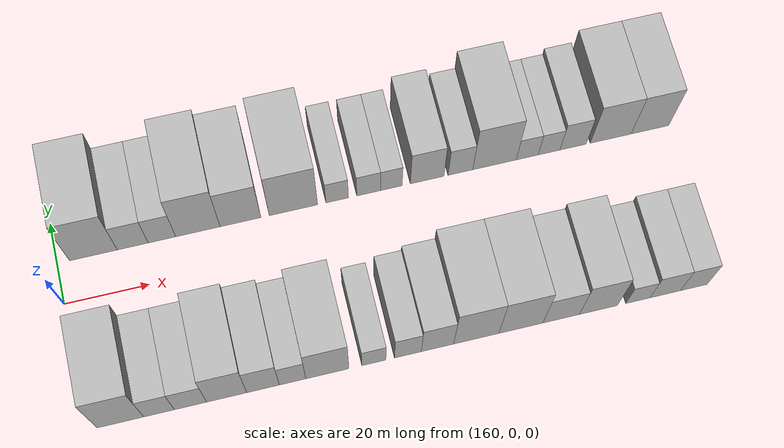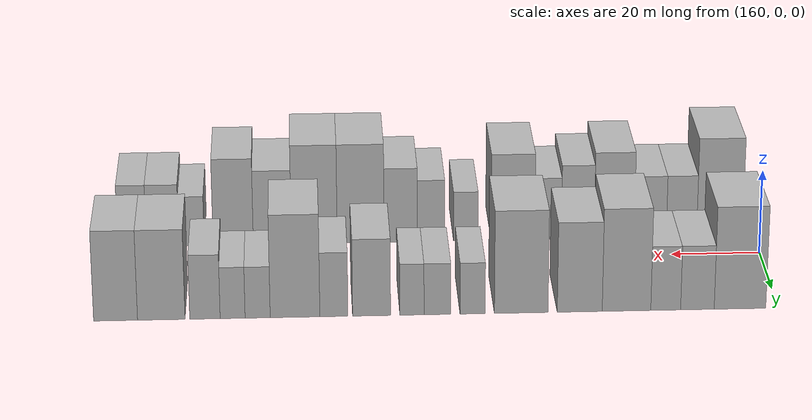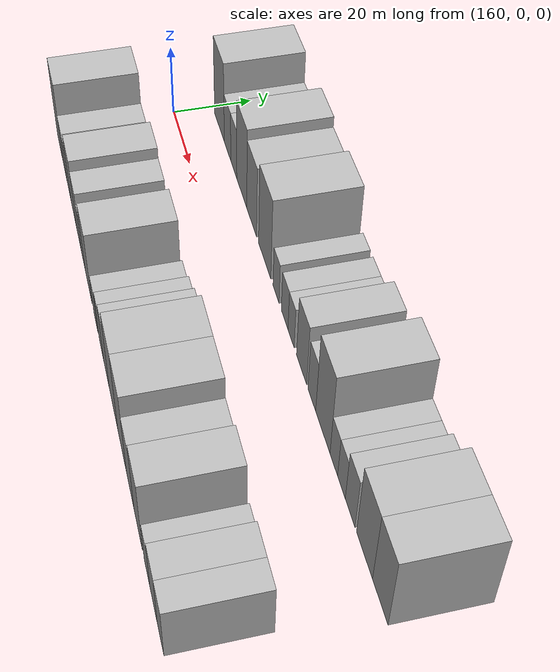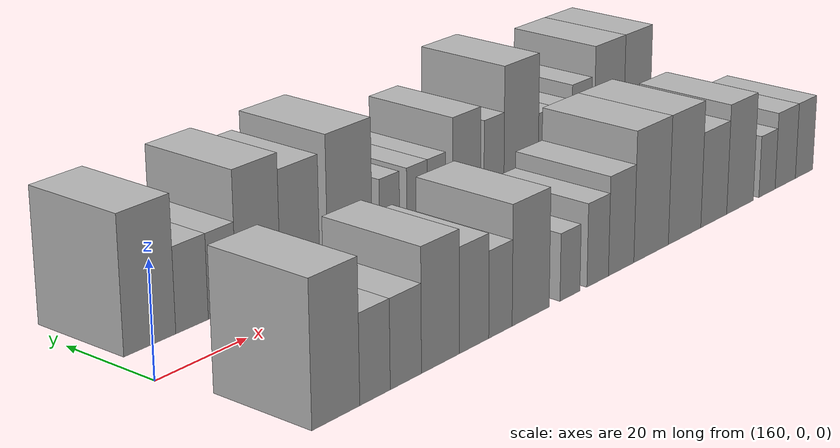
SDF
<sdf version="1.6">
 <world name="default">
  <model name="building_16">
   <static>1</static>
   <pose>168.4958 20.0000 0 0.000000 0.000000 1.570796</pose>
   <link name="link">
    <pose>0 0 12.00 0 0 0</pose>
    <collision name="collision"><geometry><box><size>20.0000 11.2589 24.0000</size></box></geometry></collision>
    <visual name="visual">
     <cast_shadows>0</cast_shadows>
     <geometry><box><size>20.0000 11.2589 24.0000</size></box></geometry>
     <material>
      <script>
       <uri>model://HANNAS_wall/materials/scripts</uri>
       <uri>model://HANNAS_wall/materials/textures</uri>
       <name>vrc/HANNAS_wall</name>
      </script>
     </material>
    </visual>
   </link>
  </model>
  <model name="building_17">
   <static>1</static>
   <pose>177.7843 20.0000 0 0.000000 0.000000 1.570796</pose>
   <link name="link">
    <pose>0 0 7.50 0 0 0</pose>
    <collision name="collision"><geometry><box><size>20.0000 7.3181 15.0000</size></box></geometry></collision>
    <visual name="visual">
     <cast_shadows>0</cast_shadows>
     <geometry><box><size>20.0000 7.3181 15.0000</size></box></geometry>
     <material>
      <script>
       <uri>model://HANNAS_wall/materials/scripts</uri>
       <uri>model://HANNAS_wall/materials/textures</uri>
       <name>vrc/HANNAS_wall</name>
      </script>
     </material>
    </visual>
   </link>
  </model>
  <model name="building_18">
   <static>1</static>
   <pose>184.6922 20.0000 0 0.000000 0.000000 1.570796</pose>
   <link name="link">
    <pose>0 0 7.50 0 0 0</pose>
    <collision name="collision"><geometry><box><size>20.0000 6.4976 15.0000</size></box></geometry></collision>
    <visual name="visual">
     <cast_shadows>0</cast_shadows>
     <geometry><box><size>20.0000 6.4976 15.0000</size></box></geometry>
     <material>
      <script>
       <uri>model://HANNAS_wall/materials/scripts</uri>
       <uri>model://HANNAS_wall/materials/textures</uri>
       <name>vrc/HANNAS_wall</name>
      </script>
     </material>
    </visual>
   </link>
  </model>
  <model name="building_19">
   <static>1</static>
   <pose>193.2254 20.0000 0 0.000000 0.000000 1.570796</pose>
   <link name="link">
    <pose>0 0 12.00 0 0 0</pose>
    <collision name="collision"><geometry><box><size>20.0000 10.5688 24.0000</size></box></geometry></collision>
    <visual name="visual">
     <cast_shadows>0</cast_shadows>
     <geometry><box><size>20.0000 10.5688 24.0000</size></box></geometry>
     <material>
      <script>
       <uri>model://HANNAS_wall/materials/scripts</uri>
       <uri>model://HANNAS_wall/materials/textures</uri>
       <name>vrc/HANNAS_wall</name>
      </script>
     </material>
    </visual>
   </link>
  </model>
  <model name="building_20">
   <static>1</static>
   <pose>203.3958 20.0000 0 0.000000 0.000000 1.570796</pose>
   <link name="link">
    <pose>0 0 10.50 0 0 0</pose>
    <collision name="collision"><geometry><box><size>20.0000 9.7721 21.0000</size></box></geometry></collision>
    <visual name="visual">
     <cast_shadows>0</cast_shadows>
     <geometry><box><size>20.0000 9.7721 21.0000</size></box></geometry>
     <material>
      <script>
       <uri>model://HANNAS_wall/materials/scripts</uri>
       <uri>model://HANNAS_wall/materials/textures</uri>
       <name>vrc/HANNAS_wall</name>
      </script>
     </material>
    </visual>
   </link>
  </model>
  <model name="building_21">
   <static>1</static>
   <pose>216.1008 20.0000 0 0.000000 0.000000 1.570796</pose>
   <link name="link">
    <pose>0 0 12.00 0 0 0</pose>
    <collision name="collision"><geometry><box><size>20.0000 11.6379 24.0000</size></box></geometry></collision>
    <visual name="visual">
     <cast_shadows>0</cast_shadows>
     <geometry><box><size>20.0000 11.6379 24.0000</size></box></geometry>
     <material>
      <script>
       <uri>model://HANNAS_wall/materials/scripts</uri>
       <uri>model://HANNAS_wall/materials/textures</uri>
       <name>vrc/HANNAS_wall</name>
      </script>
     </material>
    </visual>
   </link>
  </model>
  <model name="building_22">
   <static>1</static>
   <pose>226.6469 20.0000 0 0.000000 0.000000 1.570796</pose>
   <link name="link">
    <pose>0 0 6.00 0 0 0</pose>
    <collision name="collision"><geometry><box><size>20.0000 5.4542 12.0000</size></box></geometry></collision>
    <visual name="visual">
     <cast_shadows>0</cast_shadows>
     <geometry><box><size>20.0000 5.4542 12.0000</size></box></geometry>
     <material>
      <script>
       <uri>model://HANNAS_wall/materials/scripts</uri>
       <uri>model://HANNAS_wall/materials/textures</uri>
       <name>vrc/HANNAS_wall</name>
      </script>
     </material>
    </visual>
   </link>
  </model>
  <model name="building_23">
   <static>1</static>
   <pose>234.2700 20.0000 0 0.000000 0.000000 1.570796</pose>
   <link name="link">
    <pose>0 0 6.00 0 0 0</pose>
    <collision name="collision"><geometry><box><size>20.0000 5.7919 12.0000</size></box></geometry></collision>
    <visual name="visual">
     <cast_shadows>0</cast_shadows>
     <geometry><box><size>20.0000 5.7919 12.0000</size></box></geometry>
     <material>
      <script>
       <uri>model://HANNAS_wall/materials/scripts</uri>
       <uri>model://HANNAS_wall/materials/textures</uri>
       <name>vrc/HANNAS_wall</name>
      </script>
     </material>
    </visual>
   </link>
  </model>
  <model name="building_24">
   <static>1</static>
   <pose>239.7805 20.0000 0 0.000000 0.000000 1.570796</pose>
   <link name="link">
    <pose>0 0 6.00 0 0 0</pose>
    <collision name="collision"><geometry><box><size>20.0000 5.2292 12.0000</size></box></geometry></collision>
    <visual name="visual">
     <cast_shadows>0</cast_shadows>
     <geometry><box><size>20.0000 5.2292 12.0000</size></box></geometry>
     <material>
      <script>
       <uri>model://HANNAS_wall/materials/scripts</uri>
       <uri>model://HANNAS_wall/materials/textures</uri>
       <name>vrc/HANNAS_wall</name>
      </script>
     </material>
    </visual>
   </link>
  </model>
  <model name="building_25">
   <static>1</static>
   <pose>248.5028 20.0000 0 0.000000 0.000000 1.570796</pose>
   <link name="link">
    <pose>0 0 9.00 0 0 0</pose>
    <collision name="collision"><geometry><box><size>20.0000 8.2153 18.0000</size></box></geometry></collision>
    <visual name="visual">
     <cast_shadows>0</cast_shadows>
     <geometry><box><size>20.0000 8.2153 18.0000</size></box></geometry>
     <material>
      <script>
       <uri>model://HANNAS_wall/materials/scripts</uri>
       <uri>model://HANNAS_wall/materials/textures</uri>
       <name>vrc/HANNAS_wall</name>
      </script>
     </material>
    </visual>
   </link>
  </model>
  <model name="building_26">
   <static>1</static>
   <pose>256.6438 20.0000 0 0.000000 0.000000 1.570796</pose>
   <link name="link">
    <pose>0 0 7.50 0 0 0</pose>
    <collision name="collision"><geometry><box><size>20.0000 6.0667 15.0000</size></box></geometry></collision>
    <visual name="visual">
     <cast_shadows>0</cast_shadows>
     <geometry><box><size>20.0000 6.0667 15.0000</size></box></geometry>
     <material>
      <script>
       <uri>model://HANNAS_wall/materials/scripts</uri>
       <uri>model://HANNAS_wall/materials/textures</uri>
       <name>vrc/HANNAS_wall</name>
      </script>
     </material>
    </visual>
   </link>
  </model>
  <model name="building_27">
   <static>1</static>
   <pose>265.0303 20.0000 0 0.000000 0.000000 1.570796</pose>
   <link name="link">
    <pose>0 0 12.00 0 0 0</pose>
    <collision name="collision"><geometry><box><size>20.0000 10.7064 24.0000</size></box></geometry></collision>
    <visual name="visual">
     <cast_shadows>0</cast_shadows>
     <geometry><box><size>20.0000 10.7064 24.0000</size></box></geometry>
     <material>
      <script>
       <uri>model://HANNAS_wall/materials/scripts</uri>
       <uri>model://HANNAS_wall/materials/textures</uri>
       <name>vrc/HANNAS_wall</name>
      </script>
     </material>
    </visual>
   </link>
  </model>
  <model name="building_28">
   <static>1</static>
   <pose>273.0879 20.0000 0 0.000000 0.000000 1.570796</pose>
   <link name="link">
    <pose>0 0 6.00 0 0 0</pose>
    <collision name="collision"><geometry><box><size>20.0000 5.4087 12.0000</size></box></geometry></collision>
    <visual name="visual">
     <cast_shadows>0</cast_shadows>
     <geometry><box><size>20.0000 5.4087 12.0000</size></box></geometry>
     <material>
      <script>
       <uri>model://HANNAS_wall/materials/scripts</uri>
       <uri>model://HANNAS_wall/materials/textures</uri>
       <name>vrc/HANNAS_wall</name>
      </script>
     </material>
    </visual>
   </link>
  </model>
  <model name="building_29">
   <static>1</static>
   <pose>278.4785 20.0000 0 0.000000 0.000000 1.570796</pose>
   <link name="link">
    <pose>0 0 6.00 0 0 0</pose>
    <collision name="collision"><geometry><box><size>20.0000 5.3727 12.0000</size></box></geometry></collision>
    <visual name="visual">
     <cast_shadows>0</cast_shadows>
     <geometry><box><size>20.0000 5.3727 12.0000</size></box></geometry>
     <material>
      <script>
       <uri>model://HANNAS_wall/materials/scripts</uri>
       <uri>model://HANNAS_wall/materials/textures</uri>
       <name>vrc/HANNAS_wall</name>
      </script>
     </material>
    </visual>
   </link>
  </model>
  <model name="building_30">
   <static>1</static>
   <pose>284.4347 20.0000 0 0.000000 0.000000 1.570796</pose>
   <link name="link">
    <pose>0 0 7.50 0 0 0</pose>
    <collision name="collision"><geometry><box><size>20.0000 6.5397 15.0000</size></box></geometry></collision>
    <visual name="visual">
     <cast_shadows>0</cast_shadows>
     <geometry><box><size>20.0000 6.5397 15.0000</size></box></geometry>
     <material>
      <script>
       <uri>model://HANNAS_wall/materials/scripts</uri>
       <uri>model://HANNAS_wall/materials/textures</uri>
       <name>vrc/HANNAS_wall</name>
      </script>
     </material>
    </visual>
   </link>
  </model>
  <model name="building_31">
   <static>1</static>
   <pose>293.8150 20.0000 0 0.000000 0.000000 1.570796</pose>
   <link name="link">
    <pose>0 0 10.50 0 0 0</pose>
    <collision name="collision"><geometry><box><size>20.0000 10.2208 21.0000</size></box></geometry></collision>
    <visual name="visual">
     <cast_shadows>0</cast_shadows>
     <geometry><box><size>20.0000 10.2208 21.0000</size></box></geometry>
     <material>
      <script>
       <uri>model://HANNAS_wall/materials/scripts</uri>
       <uri>model://HANNAS_wall/materials/textures</uri>
       <name>vrc/HANNAS_wall</name>
      </script>
     </material>
    </visual>
   </link>
  </model>
  <model name="building_32">
   <static>1</static>
   <pose>303.6363 20.0000 0 0.000000 0.000000 1.570796</pose>
   <link name="link">
    <pose>0 0 10.50 0 0 0</pose>
    <collision name="collision"><geometry><box><size>20.0000 9.4219 21.0000</size></box></geometry></collision>
    <visual name="visual">
     <cast_shadows>0</cast_shadows>
     <geometry><box><size>20.0000 9.4219 21.0000</size></box></geometry>
     <material>
      <script>
       <uri>model://HANNAS_wall/materials/scripts</uri>
       <uri>model://HANNAS_wall/materials/textures</uri>
       <name>vrc/HANNAS_wall</name>
      </script>
     </material>
    </visual>
   </link>
  </model>
  <model name="building_49">
   <static>1</static>
   <pose>167.7622 -20.0000 0 0.000000 0.000000 1.570796</pose>
   <link name="link">
    <pose>0 0 12.00 0 0 0</pose>
    <collision name="collision"><geometry><box><size>20.0000 10.5459 24.0000</size></box></geometry></collision>
    <visual name="visual">
     <cast_shadows>0</cast_shadows>
     <geometry><box><size>20.0000 10.5459 24.0000</size></box></geometry>
     <material>
      <script>
       <uri>model://HANNAS_wall/materials/scripts</uri>
       <uri>model://HANNAS_wall/materials/textures</uri>
       <name>vrc/HANNAS_wall</name>
      </script>
     </material>
    </visual>
   </link>
  </model>
  <model name="building_50">
   <static>1</static>
   <pose>176.5200 -20.0000 0 0.000000 0.000000 1.570796</pose>
   <link name="link">
    <pose>0 0 7.50 0 0 0</pose>
    <collision name="collision"><geometry><box><size>20.0000 6.9697 15.0000</size></box></geometry></collision>
    <visual name="visual">
     <cast_shadows>0</cast_shadows>
     <geometry><box><size>20.0000 6.9697 15.0000</size></box></geometry>
     <material>
      <script>
       <uri>model://HANNAS_wall/materials/scripts</uri>
       <uri>model://HANNAS_wall/materials/textures</uri>
       <name>vrc/HANNAS_wall</name>
      </script>
     </material>
    </visual>
   </link>
  </model>
  <model name="building_51">
   <static>1</static>
   <pose>183.6822 -20.0000 0 0.000000 0.000000 1.570796</pose>
   <link name="link">
    <pose>0 0 7.50 0 0 0</pose>
    <collision name="collision"><geometry><box><size>20.0000 7.3549 15.0000</size></box></geometry></collision>
    <visual name="visual">
     <cast_shadows>0</cast_shadows>
     <geometry><box><size>20.0000 7.3549 15.0000</size></box></geometry>
     <material>
      <script>
       <uri>model://HANNAS_wall/materials/scripts</uri>
       <uri>model://HANNAS_wall/materials/textures</uri>
       <name>vrc/HANNAS_wall</name>
      </script>
     </material>
    </visual>
   </link>
  </model>
  <model name="building_52">
   <static>1</static>
   <pose>191.9594 -20.0000 0 0.000000 0.000000 1.570796</pose>
   <link name="link">
    <pose>0 0 10.50 0 0 0</pose>
    <collision name="collision"><geometry><box><size>20.0000 9.1994 21.0000</size></box></geometry></collision>
    <visual name="visual">
     <cast_shadows>0</cast_shadows>
     <geometry><box><size>20.0000 9.1994 21.0000</size></box></geometry>
     <material>
      <script>
       <uri>model://HANNAS_wall/materials/scripts</uri>
       <uri>model://HANNAS_wall/materials/textures</uri>
       <name>vrc/HANNAS_wall</name>
      </script>
     </material>
    </visual>
   </link>
  </model>
  <model name="building_53">
   <static>1</static>
   <pose>200.3121 -20.0000 0 0.000000 0.000000 1.570796</pose>
   <link name="link">
    <pose>0 0 9.00 0 0 0</pose>
    <collision name="collision"><geometry><box><size>20.0000 7.5061 18.0000</size></box></geometry></collision>
    <visual name="visual">
     <cast_shadows>0</cast_shadows>
     <geometry><box><size>20.0000 7.5061 18.0000</size></box></geometry>
     <material>
      <script>
       <uri>model://HANNAS_wall/materials/scripts</uri>
       <uri>model://HANNAS_wall/materials/textures</uri>
       <name>vrc/HANNAS_wall</name>
      </script>
     </material>
    </visual>
   </link>
  </model>
  <model name="building_54">
   <static>1</static>
   <pose>207.1144 -20.0000 0 0.000000 0.000000 1.570796</pose>
   <link name="link">
    <pose>0 0 7.50 0 0 0</pose>
    <collision name="collision"><geometry><box><size>20.0000 6.0985 15.0000</size></box></geometry></collision>
    <visual name="visual">
     <cast_shadows>0</cast_shadows>
     <geometry><box><size>20.0000 6.0985 15.0000</size></box></geometry>
     <material>
      <script>
       <uri>model://HANNAS_wall/materials/scripts</uri>
       <uri>model://HANNAS_wall/materials/textures</uri>
       <name>vrc/HANNAS_wall</name>
      </script>
     </material>
    </visual>
   </link>
  </model>
  <model name="building_55">
   <static>1</static>
   <pose>215.1546 -20.0000 0 0.000000 0.000000 1.570796</pose>
   <link name="link">
    <pose>0 0 10.50 0 0 0</pose>
    <collision name="collision"><geometry><box><size>20.0000 9.9819 21.0000</size></box></geometry></collision>
    <visual name="visual">
     <cast_shadows>0</cast_shadows>
     <geometry><box><size>20.0000 9.9819 21.0000</size></box></geometry>
     <material>
      <script>
       <uri>model://HANNAS_wall/materials/scripts</uri>
       <uri>model://HANNAS_wall/materials/textures</uri>
       <name>vrc/HANNAS_wall</name>
      </script>
     </material>
    </visual>
   </link>
  </model>
  <model name="building_56">
   <static>1</static>
   <pose>225.9427 -20.0000 0 0.000000 0.000000 1.570796</pose>
   <link name="link">
    <pose>0 0 6.00 0 0 0</pose>
    <collision name="collision"><geometry><box><size>20.0000 5.5945 12.0000</size></box></geometry></collision>
    <visual name="visual">
     <cast_shadows>0</cast_shadows>
     <geometry><box><size>20.0000 5.5945 12.0000</size></box></geometry>
     <material>
      <script>
       <uri>model://HANNAS_wall/materials/scripts</uri>
       <uri>model://HANNAS_wall/materials/textures</uri>
       <name>vrc/HANNAS_wall</name>
      </script>
     </material>
    </visual>
   </link>
  </model>
  <model name="building_57">
   <static>1</static>
   <pose>233.8667 -20.0000 0 0.000000 0.000000 1.570796</pose>
   <link name="link">
    <pose>0 0 7.50 0 0 0</pose>
    <collision name="collision"><geometry><box><size>20.0000 6.2535 15.0000</size></box></geometry></collision>
    <visual name="visual">
     <cast_shadows>0</cast_shadows>
     <geometry><box><size>20.0000 6.2535 15.0000</size></box></geometry>
     <material>
      <script>
       <uri>model://HANNAS_wall/materials/scripts</uri>
       <uri>model://HANNAS_wall/materials/textures</uri>
       <name>vrc/HANNAS_wall</name>
      </script>
     </material>
    </visual>
   </link>
  </model>
  <model name="building_58">
   <static>1</static>
   <pose>240.7866 -20.0000 0 0.000000 0.000000 1.570796</pose>
   <link name="link">
    <pose>0 0 9.00 0 0 0</pose>
    <collision name="collision"><geometry><box><size>20.0000 7.5861 18.0000</size></box></geometry></collision>
    <visual name="visual">
     <cast_shadows>0</cast_shadows>
     <geometry><box><size>20.0000 7.5861 18.0000</size></box></geometry>
     <material>
      <script>
       <uri>model://HANNAS_wall/materials/scripts</uri>
       <uri>model://HANNAS_wall/materials/textures</uri>
       <name>vrc/HANNAS_wall</name>
      </script>
     </material>
    </visual>
   </link>
  </model>
  <model name="building_59">
   <static>1</static>
   <pose>249.9186 -20.0000 0 0.000000 0.000000 1.570796</pose>
   <link name="link">
    <pose>0 0 12.00 0 0 0</pose>
    <collision name="collision"><geometry><box><size>20.0000 10.6780 24.0000</size></box></geometry></collision>
    <visual name="visual">
     <cast_shadows>0</cast_shadows>
     <geometry><box><size>20.0000 10.6780 24.0000</size></box></geometry>
     <material>
      <script>
       <uri>model://HANNAS_wall/materials/scripts</uri>
       <uri>model://HANNAS_wall/materials/textures</uri>
       <name>vrc/HANNAS_wall</name>
      </script>
     </material>
    </visual>
   </link>
  </model>
  <model name="building_60">
   <static>1</static>
   <pose>260.4790 -20.0000 0 0.000000 0.000000 1.570796</pose>
   <link name="link">
    <pose>0 0 12.00 0 0 0</pose>
    <collision name="collision"><geometry><box><size>20.0000 10.4428 24.0000</size></box></geometry></collision>
    <visual name="visual">
     <cast_shadows>0</cast_shadows>
     <geometry><box><size>20.0000 10.4428 24.0000</size></box></geometry>
     <material>
      <script>
       <uri>model://HANNAS_wall/materials/scripts</uri>
       <uri>model://HANNAS_wall/materials/textures</uri>
       <name>vrc/HANNAS_wall</name>
      </script>
     </material>
    </visual>
   </link>
  </model>
  <model name="building_61">
   <static>1</static>
   <pose>270.0182 -20.0000 0 0.000000 0.000000 1.570796</pose>
   <link name="link">
    <pose>0 0 9.00 0 0 0</pose>
    <collision name="collision"><geometry><box><size>20.0000 8.6356 18.0000</size></box></geometry></collision>
    <visual name="visual">
     <cast_shadows>0</cast_shadows>
     <geometry><box><size>20.0000 8.6356 18.0000</size></box></geometry>
     <material>
      <script>
       <uri>model://HANNAS_wall/materials/scripts</uri>
       <uri>model://HANNAS_wall/materials/textures</uri>
       <name>vrc/HANNAS_wall</name>
      </script>
     </material>
    </visual>
   </link>
  </model>
  <model name="building_62">
   <static>1</static>
   <pose>278.9018 -20.0000 0 0.000000 0.000000 1.570796</pose>
   <link name="link">
    <pose>0 0 10.50 0 0 0</pose>
    <collision name="collision"><geometry><box><size>20.0000 9.1316 21.0000</size></box></geometry></collision>
    <visual name="visual">
     <cast_shadows>0</cast_shadows>
     <geometry><box><size>20.0000 9.1316 21.0000</size></box></geometry>
     <material>
      <script>
       <uri>model://HANNAS_wall/materials/scripts</uri>
       <uri>model://HANNAS_wall/materials/textures</uri>
       <name>vrc/HANNAS_wall</name>
      </script>
     </material>
    </visual>
   </link>
  </model>
  <model name="building_63">
   <static>1</static>
   <pose>288.3574 -20.0000 0 0.000000 0.000000 1.570796</pose>
   <link name="link">
    <pose>0 0 6.00 0 0 0</pose>
    <collision name="collision"><geometry><box><size>20.0000 5.7794 12.0000</size></box></geometry></collision>
    <visual name="visual">
     <cast_shadows>0</cast_shadows>
     <geometry><box><size>20.0000 5.7794 12.0000</size></box></geometry>
     <material>
      <script>
       <uri>model://HANNAS_wall/materials/scripts</uri>
       <uri>model://HANNAS_wall/materials/textures</uri>
       <name>vrc/HANNAS_wall</name>
      </script>
     </material>
    </visual>
   </link>
  </model>
  <model name="building_64">
   <static>1</static>
   <pose>294.9369 -20.0000 0 0.000000 0.000000 1.570796</pose>
   <link name="link">
    <pose>0 0 7.50 0 0 0</pose>
    <collision name="collision"><geometry><box><size>20.0000 7.3797 15.0000</size></box></geometry></collision>
    <visual name="visual">
     <cast_shadows>0</cast_shadows>
     <geometry><box><size>20.0000 7.3797 15.0000</size></box></geometry>
     <material>
      <script>
       <uri>model://HANNAS_wall/materials/scripts</uri>
       <uri>model://HANNAS_wall/materials/textures</uri>
       <name>vrc/HANNAS_wall</name>
      </script>
     </material>
    </visual>
   </link>
  </model>
  <model name="building_65">
   <static>1</static>
   <pose>301.8549 -20.0000 0 0.000000 0.000000 1.570796</pose>
   <link name="link">
    <pose>0 0 7.50 0 0 0</pose>
    <collision name="collision"><geometry><box><size>20.0000 6.4562 15.0000</size></box></geometry></collision>
    <visual name="visual">
     <cast_shadows>0</cast_shadows>
     <geometry><box><size>20.0000 6.4562 15.0000</size></box></geometry>
     <material>
      <script>
       <uri>model://HANNAS_wall/materials/scripts</uri>
       <uri>model://HANNAS_wall/materials/textures</uri>
       <name>vrc/HANNAS_wall</name>
      </script>
     </material>
    </visual>
   </link>
  </model>
 </world>
</sdf>
